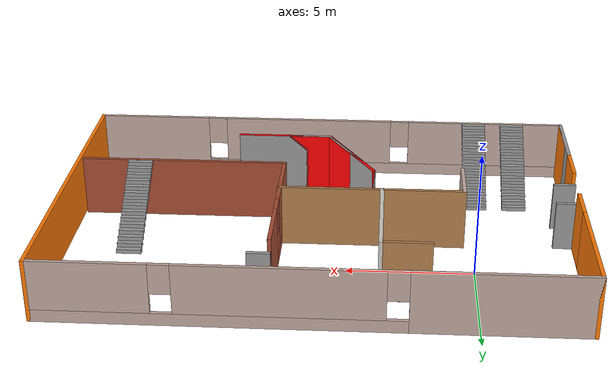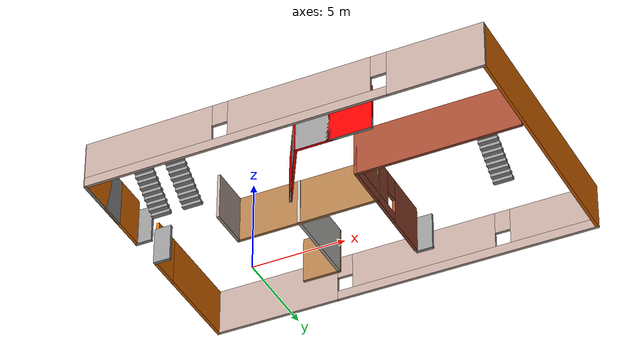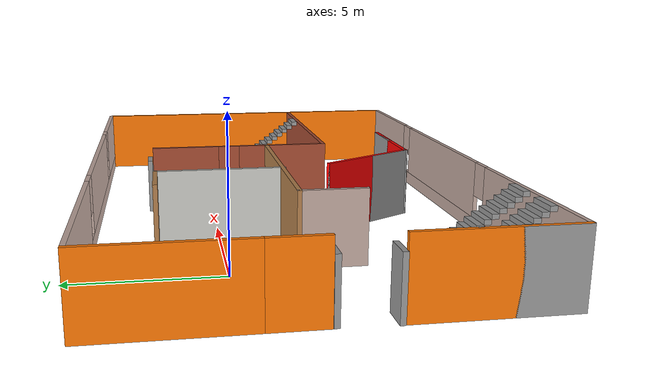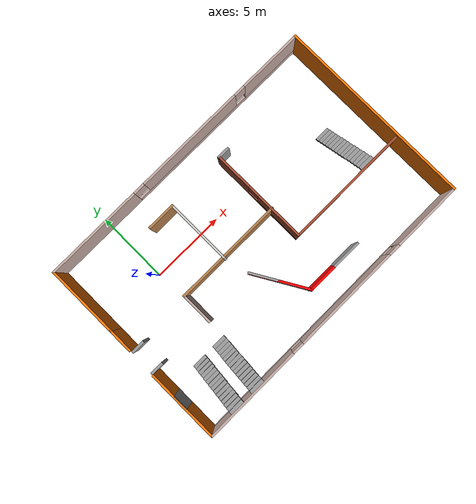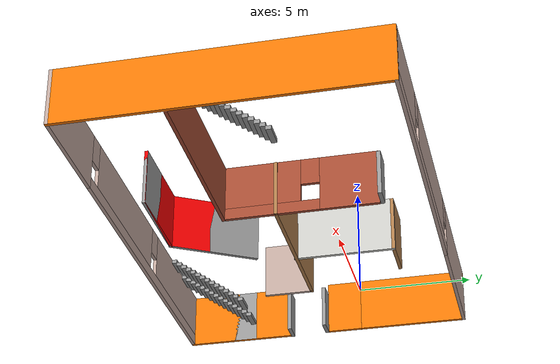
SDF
<?xml version='1.0'?>
<sdf version='1.6'>
  <model name='buidlding1'>
    <pose frame=''>6.0818 -2.405 0 0 -0 0</pose>
    <link name='Door_0'>
      <collision name='Door_0_Collision'>
        <geometry>
          <box>
            <size>0.9 0.17 2</size>
          </box>
        </geometry>
        <pose frame=''>0 0 1 0 -0 0</pose>
      </collision>
      <visual name='Door_0_Visual'>
        <pose frame=''>0 0 1 0 -0 0</pose>
        <geometry>
          <box>
            <size>0.9 0.17 2</size>
          </box>
        </geometry>
        <material>
          <script>
            <uri>file://media/materials/scripts/gazebo.material</uri>
            <name>Gazebo/Grey</name>
          </script>
        </material>
      </visual>
      <pose frame=''>-9.76683 0.055388 0 0 -0 0</pose>
    </link>
    <link name='Door_1'>
      <collision name='Door_1_Collision'>
        <geometry>
          <box>
            <size>0.9 0.17 2</size>
          </box>
        </geometry>
        <pose frame=''>0 0 1 0 -0 0</pose>
      </collision>
      <visual name='Door_1_Visual'>
        <pose frame=''>0 0 1 0 -0 0</pose>
        <geometry>
          <box>
            <size>0.9 0.17 2</size>
          </box>
        </geometry>
        <material>
          <script>
            <uri>file://media/materials/scripts/gazebo.material</uri>
            <name>Gazebo/Grey</name>
          </script>
        </material>
      </visual>
      <pose frame=''>-9.84728 -1.65427 0 0 -0 0</pose>
    </link>
    <link name='Door_2'>
      <collision name='Door_2_Collision'>
        <geometry>
          <box>
            <size>0.9 0.17 2</size>
          </box>
        </geometry>
        <pose frame=''>0 0 1 0 -0 0</pose>
      </collision>
      <visual name='Door_2_Visual'>
        <pose frame=''>0 0 1 0 -0 0</pose>
        <geometry>
          <box>
            <size>0.9 0.17 2</size>
          </box>
        </geometry>
        <material>
          <script>
            <uri>file://media/materials/scripts/gazebo.material</uri>
            <name>Gazebo/Grey</name>
          </script>
        </material>
      </visual>
      <pose frame=''>2.03298 4.75086 0 0 -0 0</pose>
    </link>
    <link name='Stairs_0'>
      <visual name='Stairs_0_Visual_0'>
        <pose frame=''>-6.36763 -3.21899 0.083333 0 -0 0</pose>
        <geometry>
          <box>
            <size>1 0.233333 0.166667</size>
          </box>
        </geometry>
        <material>
          <script>
            <uri>file://media/materials/scripts/gazebo.material</uri>
            <name>Gazebo/Grey</name>
          </script>
          <ambient>1 1 1 1</ambient>
        </material>
        <meta>
          <layer>0</layer>
        </meta>
      </visual>
      <collision name='Stairs_0_Collision_0'>
        <geometry>
          <box>
            <size>1 0.233333 0.166667</size>
          </box>
        </geometry>
        <pose frame=''>-6.36763 -3.21899 0.083333 0 -0 0</pose>
      </collision>
      <visual name='Stairs_0_Visual_1'>
        <pose frame=''>-6.36763 -3.45232 0.25 0 -0 0</pose>
        <geometry>
          <box>
            <size>1 0.233333 0.166667</size>
          </box>
        </geometry>
        <material>
          <script>
            <uri>file://media/materials/scripts/gazebo.material</uri>
            <name>Gazebo/Grey</name>
          </script>
          <ambient>1 1 1 1</ambient>
        </material>
        <meta>
          <layer>0</layer>
        </meta>
      </visual>
      <collision name='Stairs_0_Collision_1'>
        <geometry>
          <box>
            <size>1 0.233333 0.166667</size>
          </box>
        </geometry>
        <pose frame=''>-6.36763 -3.45232 0.25 0 -0 0</pose>
      </collision>
      <visual name='Stairs_0_Visual_2'>
        <pose frame=''>-6.36763 -3.68566 0.416667 0 -0 0</pose>
        <geometry>
          <box>
            <size>1 0.233333 0.166667</size>
          </box>
        </geometry>
        <material>
          <script>
            <uri>file://media/materials/scripts/gazebo.material</uri>
            <name>Gazebo/Grey</name>
          </script>
          <ambient>1 1 1 1</ambient>
        </material>
        <meta>
          <layer>0</layer>
        </meta>
      </visual>
      <collision name='Stairs_0_Collision_2'>
        <geometry>
          <box>
            <size>1 0.233333 0.166667</size>
          </box>
        </geometry>
        <pose frame=''>-6.36763 -3.68566 0.416667 0 -0 0</pose>
      </collision>
      <visual name='Stairs_0_Visual_3'>
        <pose frame=''>-6.36763 -3.91899 0.583333 0 -0 0</pose>
        <geometry>
          <box>
            <size>1 0.233333 0.166667</size>
          </box>
        </geometry>
        <material>
          <script>
            <uri>file://media/materials/scripts/gazebo.material</uri>
            <name>Gazebo/Grey</name>
          </script>
          <ambient>1 1 1 1</ambient>
        </material>
        <meta>
          <layer>0</layer>
        </meta>
      </visual>
      <collision name='Stairs_0_Collision_3'>
        <geometry>
          <box>
            <size>1 0.233333 0.166667</size>
          </box>
        </geometry>
        <pose frame=''>-6.36763 -3.91899 0.583333 0 -0 0</pose>
      </collision>
      <visual name='Stairs_0_Visual_4'>
        <pose frame=''>-6.36763 -4.15232 0.75 0 -0 0</pose>
        <geometry>
          <box>
            <size>1 0.233333 0.166667</size>
          </box>
        </geometry>
        <material>
          <script>
            <uri>file://media/materials/scripts/gazebo.material</uri>
            <name>Gazebo/Grey</name>
          </script>
          <ambient>1 1 1 1</ambient>
        </material>
        <meta>
          <layer>0</layer>
        </meta>
      </visual>
      <collision name='Stairs_0_Collision_4'>
        <geometry>
          <box>
            <size>1 0.233333 0.166667</size>
          </box>
        </geometry>
        <pose frame=''>-6.36763 -4.15232 0.75 0 -0 0</pose>
      </collision>
      <visual name='Stairs_0_Visual_5'>
        <pose frame=''>-6.36763 -4.38566 0.916667 0 -0 0</pose>
        <geometry>
          <box>
            <size>1 0.233333 0.166667</size>
          </box>
        </geometry>
        <material>
          <script>
            <uri>file://media/materials/scripts/gazebo.material</uri>
            <name>Gazebo/Grey</name>
          </script>
          <ambient>1 1 1 1</ambient>
        </material>
        <meta>
          <layer>0</layer>
        </meta>
      </visual>
      <collision name='Stairs_0_Collision_5'>
        <geometry>
          <box>
            <size>1 0.233333 0.166667</size>
          </box>
        </geometry>
        <pose frame=''>-6.36763 -4.38566 0.916667 0 -0 0</pose>
      </collision>
      <visual name='Stairs_0_Visual_6'>
        <pose frame=''>-6.36763 -4.61899 1.08333 0 -0 0</pose>
        <geometry>
          <box>
            <size>1 0.233333 0.166667</size>
          </box>
        </geometry>
        <material>
          <script>
            <uri>file://media/materials/scripts/gazebo.material</uri>
            <name>Gazebo/Grey</name>
          </script>
          <ambient>1 1 1 1</ambient>
        </material>
        <meta>
          <layer>0</layer>
        </meta>
      </visual>
      <collision name='Stairs_0_Collision_6'>
        <geometry>
          <box>
            <size>1 0.233333 0.166667</size>
          </box>
        </geometry>
        <pose frame=''>-6.36763 -4.61899 1.08333 0 -0 0</pose>
      </collision>
      <visual name='Stairs_0_Visual_7'>
        <pose frame=''>-6.36763 -4.85232 1.25 0 -0 0</pose>
        <geometry>
          <box>
            <size>1 0.233333 0.166667</size>
          </box>
        </geometry>
        <material>
          <script>
            <uri>file://media/materials/scripts/gazebo.material</uri>
            <name>Gazebo/Grey</name>
          </script>
          <ambient>1 1 1 1</ambient>
        </material>
        <meta>
          <layer>0</layer>
        </meta>
      </visual>
      <collision name='Stairs_0_Collision_7'>
        <geometry>
          <box>
            <size>1 0.233333 0.166667</size>
          </box>
        </geometry>
        <pose frame=''>-6.36763 -4.85232 1.25 0 -0 0</pose>
      </collision>
      <visual name='Stairs_0_Visual_8'>
        <pose frame=''>-6.36763 -5.08566 1.41667 0 -0 0</pose>
        <geometry>
          <box>
            <size>1 0.233333 0.166667</size>
          </box>
        </geometry>
        <material>
          <script>
            <uri>file://media/materials/scripts/gazebo.material</uri>
            <name>Gazebo/Grey</name>
          </script>
          <ambient>1 1 1 1</ambient>
        </material>
        <meta>
          <layer>0</layer>
        </meta>
      </visual>
      <collision name='Stairs_0_Collision_8'>
        <geometry>
          <box>
            <size>1 0.233333 0.166667</size>
          </box>
        </geometry>
        <pose frame=''>-6.36763 -5.08566 1.41667 0 -0 0</pose>
      </collision>
      <visual name='Stairs_0_Visual_9'>
        <pose frame=''>-6.36763 -5.31899 1.58333 0 -0 0</pose>
        <geometry>
          <box>
            <size>1 0.233333 0.166667</size>
          </box>
        </geometry>
        <material>
          <script>
            <uri>file://media/materials/scripts/gazebo.material</uri>
            <name>Gazebo/Grey</name>
          </script>
          <ambient>1 1 1 1</ambient>
        </material>
        <meta>
          <layer>0</layer>
        </meta>
      </visual>
      <collision name='Stairs_0_Collision_9'>
        <geometry>
          <box>
            <size>1 0.233333 0.166667</size>
          </box>
        </geometry>
        <pose frame=''>-6.36763 -5.31899 1.58333 0 -0 0</pose>
      </collision>
      <visual name='Stairs_0_Visual_10'>
        <pose frame=''>-6.36763 -5.55232 1.75 0 -0 0</pose>
        <geometry>
          <box>
            <size>1 0.233333 0.166667</size>
          </box>
        </geometry>
        <material>
          <script>
            <uri>file://media/materials/scripts/gazebo.material</uri>
            <name>Gazebo/Grey</name>
          </script>
          <ambient>1 1 1 1</ambient>
        </material>
        <meta>
          <layer>0</layer>
        </meta>
      </visual>
      <collision name='Stairs_0_Collision_10'>
        <geometry>
          <box>
            <size>1 0.233333 0.166667</size>
          </box>
        </geometry>
        <pose frame=''>-6.36763 -5.55232 1.75 0 -0 0</pose>
      </collision>
      <visual name='Stairs_0_Visual_11'>
        <pose frame=''>-6.36763 -5.78566 1.91667 0 -0 0</pose>
        <geometry>
          <box>
            <size>1 0.233333 0.166667</size>
          </box>
        </geometry>
        <material>
          <script>
            <uri>file://media/materials/scripts/gazebo.material</uri>
            <name>Gazebo/Grey</name>
          </script>
          <ambient>1 1 1 1</ambient>
        </material>
        <meta>
          <layer>0</layer>
        </meta>
      </visual>
      <collision name='Stairs_0_Collision_11'>
        <geometry>
          <box>
            <size>1 0.233333 0.166667</size>
          </box>
        </geometry>
        <pose frame=''>-6.36763 -5.78566 1.91667 0 -0 0</pose>
      </collision>
      <visual name='Stairs_0_Visual_12'>
        <pose frame=''>-6.36763 -6.01899 2.08333 0 -0 0</pose>
        <geometry>
          <box>
            <size>1 0.233333 0.166667</size>
          </box>
        </geometry>
        <material>
          <script>
            <uri>file://media/materials/scripts/gazebo.material</uri>
            <name>Gazebo/Grey</name>
          </script>
          <ambient>1 1 1 1</ambient>
        </material>
        <meta>
          <layer>0</layer>
        </meta>
      </visual>
      <collision name='Stairs_0_Collision_12'>
        <geometry>
          <box>
            <size>1 0.233333 0.166667</size>
          </box>
        </geometry>
        <pose frame=''>-6.36763 -6.01899 2.08333 0 -0 0</pose>
      </collision>
      <visual name='Stairs_0_Visual_13'>
        <pose frame=''>-6.36763 -6.25232 2.25 0 -0 0</pose>
        <geometry>
          <box>
            <size>1 0.233333 0.166667</size>
          </box>
        </geometry>
        <material>
          <script>
            <uri>file://media/materials/scripts/gazebo.material</uri>
            <name>Gazebo/Grey</name>
          </script>
          <ambient>1 1 1 1</ambient>
        </material>
        <meta>
          <layer>0</layer>
        </meta>
      </visual>
      <collision name='Stairs_0_Collision_13'>
        <geometry>
          <box>
            <size>1 0.233333 0.166667</size>
          </box>
        </geometry>
        <pose frame=''>-6.36763 -6.25232 2.25 0 -0 0</pose>
      </collision>
      <visual name='Stairs_0_Visual_14'>
        <pose frame=''>-6.36763 -6.48566 2.41667 0 -0 0</pose>
        <geometry>
          <box>
            <size>1 0.233333 0.166667</size>
          </box>
        </geometry>
        <material>
          <script>
            <uri>file://media/materials/scripts/gazebo.material</uri>
            <name>Gazebo/Grey</name>
          </script>
          <ambient>1 1 1 1</ambient>
        </material>
        <meta>
          <layer>0</layer>
        </meta>
      </visual>
      <collision name='Stairs_0_Collision_14'>
        <geometry>
          <box>
            <size>1 0.233333 0.166667</size>
          </box>
        </geometry>
        <pose frame=''>-6.36763 -6.48566 2.41667 0 -0 0</pose>
      </collision>
    </link>
    <link name='Stairs_1'>
      <visual name='Stairs_1_Visual_0'>
        <pose frame=''>7.60041 1.42857 0.083333 0 -0 0</pose>
        <geometry>
          <box>
            <size>1 0.233333 0.166667</size>
          </box>
        </geometry>
        <material>
          <script>
            <uri>file://media/materials/scripts/gazebo.material</uri>
            <name>Gazebo/Grey</name>
          </script>
          <ambient>1 1 1 1</ambient>
        </material>
        <meta>
          <layer>0</layer>
        </meta>
      </visual>
      <collision name='Stairs_1_Collision_0'>
        <geometry>
          <box>
            <size>1 0.233333 0.166667</size>
          </box>
        </geometry>
        <pose frame=''>7.60041 1.42857 0.083333 0 -0 0</pose>
      </collision>
      <visual name='Stairs_1_Visual_1'>
        <pose frame=''>7.60041 1.19524 0.25 0 -0 0</pose>
        <geometry>
          <box>
            <size>1 0.233333 0.166667</size>
          </box>
        </geometry>
        <material>
          <script>
            <uri>file://media/materials/scripts/gazebo.material</uri>
            <name>Gazebo/Grey</name>
          </script>
          <ambient>1 1 1 1</ambient>
        </material>
        <meta>
          <layer>0</layer>
        </meta>
      </visual>
      <collision name='Stairs_1_Collision_1'>
        <geometry>
          <box>
            <size>1 0.233333 0.166667</size>
          </box>
        </geometry>
        <pose frame=''>7.60041 1.19524 0.25 0 -0 0</pose>
      </collision>
      <visual name='Stairs_1_Visual_2'>
        <pose frame=''>7.60041 0.961905 0.416667 0 -0 0</pose>
        <geometry>
          <box>
            <size>1 0.233333 0.166667</size>
          </box>
        </geometry>
        <material>
          <script>
            <uri>file://media/materials/scripts/gazebo.material</uri>
            <name>Gazebo/Grey</name>
          </script>
          <ambient>1 1 1 1</ambient>
        </material>
        <meta>
          <layer>0</layer>
        </meta>
      </visual>
      <collision name='Stairs_1_Collision_2'>
        <geometry>
          <box>
            <size>1 0.233333 0.166667</size>
          </box>
        </geometry>
        <pose frame=''>7.60041 0.961905 0.416667 0 -0 0</pose>
      </collision>
      <visual name='Stairs_1_Visual_3'>
        <pose frame=''>7.60041 0.728572 0.583333 0 -0 0</pose>
        <geometry>
          <box>
            <size>1 0.233333 0.166667</size>
          </box>
        </geometry>
        <material>
          <script>
            <uri>file://media/materials/scripts/gazebo.material</uri>
            <name>Gazebo/Grey</name>
          </script>
          <ambient>1 1 1 1</ambient>
        </material>
        <meta>
          <layer>0</layer>
        </meta>
      </visual>
      <collision name='Stairs_1_Collision_3'>
        <geometry>
          <box>
            <size>1 0.233333 0.166667</size>
          </box>
        </geometry>
        <pose frame=''>7.60041 0.728572 0.583333 0 -0 0</pose>
      </collision>
      <visual name='Stairs_1_Visual_4'>
        <pose frame=''>7.60041 0.495239 0.75 0 -0 0</pose>
        <geometry>
          <box>
            <size>1 0.233333 0.166667</size>
          </box>
        </geometry>
        <material>
          <script>
            <uri>file://media/materials/scripts/gazebo.material</uri>
            <name>Gazebo/Grey</name>
          </script>
          <ambient>1 1 1 1</ambient>
        </material>
        <meta>
          <layer>0</layer>
        </meta>
      </visual>
      <collision name='Stairs_1_Collision_4'>
        <geometry>
          <box>
            <size>1 0.233333 0.166667</size>
          </box>
        </geometry>
        <pose frame=''>7.60041 0.495239 0.75 0 -0 0</pose>
      </collision>
      <visual name='Stairs_1_Visual_5'>
        <pose frame=''>7.60041 0.261905 0.916667 0 -0 0</pose>
        <geometry>
          <box>
            <size>1 0.233333 0.166667</size>
          </box>
        </geometry>
        <material>
          <script>
            <uri>file://media/materials/scripts/gazebo.material</uri>
            <name>Gazebo/Grey</name>
          </script>
          <ambient>1 1 1 1</ambient>
        </material>
        <meta>
          <layer>0</layer>
        </meta>
      </visual>
      <collision name='Stairs_1_Collision_5'>
        <geometry>
          <box>
            <size>1 0.233333 0.166667</size>
          </box>
        </geometry>
        <pose frame=''>7.60041 0.261905 0.916667 0 -0 0</pose>
      </collision>
      <visual name='Stairs_1_Visual_6'>
        <pose frame=''>7.60041 0.028572 1.08333 0 -0 0</pose>
        <geometry>
          <box>
            <size>1 0.233333 0.166667</size>
          </box>
        </geometry>
        <material>
          <script>
            <uri>file://media/materials/scripts/gazebo.material</uri>
            <name>Gazebo/Grey</name>
          </script>
          <ambient>1 1 1 1</ambient>
        </material>
        <meta>
          <layer>0</layer>
        </meta>
      </visual>
      <collision name='Stairs_1_Collision_6'>
        <geometry>
          <box>
            <size>1 0.233333 0.166667</size>
          </box>
        </geometry>
        <pose frame=''>7.60041 0.028572 1.08333 0 -0 0</pose>
      </collision>
      <visual name='Stairs_1_Visual_7'>
        <pose frame=''>7.60041 -0.204761 1.25 0 -0 0</pose>
        <geometry>
          <box>
            <size>1 0.233333 0.166667</size>
          </box>
        </geometry>
        <material>
          <script>
            <uri>file://media/materials/scripts/gazebo.material</uri>
            <name>Gazebo/Grey</name>
          </script>
          <ambient>1 1 1 1</ambient>
        </material>
        <meta>
          <layer>0</layer>
        </meta>
      </visual>
      <collision name='Stairs_1_Collision_7'>
        <geometry>
          <box>
            <size>1 0.233333 0.166667</size>
          </box>
        </geometry>
        <pose frame=''>7.60041 -0.204761 1.25 0 -0 0</pose>
      </collision>
      <visual name='Stairs_1_Visual_8'>
        <pose frame=''>7.60041 -0.438095 1.41667 0 -0 0</pose>
        <geometry>
          <box>
            <size>1 0.233333 0.166667</size>
          </box>
        </geometry>
        <material>
          <script>
            <uri>file://media/materials/scripts/gazebo.material</uri>
            <name>Gazebo/Grey</name>
          </script>
          <ambient>1 1 1 1</ambient>
        </material>
        <meta>
          <layer>0</layer>
        </meta>
      </visual>
      <collision name='Stairs_1_Collision_8'>
        <geometry>
          <box>
            <size>1 0.233333 0.166667</size>
          </box>
        </geometry>
        <pose frame=''>7.60041 -0.438095 1.41667 0 -0 0</pose>
      </collision>
      <visual name='Stairs_1_Visual_9'>
        <pose frame=''>7.60041 -0.671428 1.58333 0 -0 0</pose>
        <geometry>
          <box>
            <size>1 0.233333 0.166667</size>
          </box>
        </geometry>
        <material>
          <script>
            <uri>file://media/materials/scripts/gazebo.material</uri>
            <name>Gazebo/Grey</name>
          </script>
          <ambient>1 1 1 1</ambient>
        </material>
        <meta>
          <layer>0</layer>
        </meta>
      </visual>
      <collision name='Stairs_1_Collision_9'>
        <geometry>
          <box>
            <size>1 0.233333 0.166667</size>
          </box>
        </geometry>
        <pose frame=''>7.60041 -0.671428 1.58333 0 -0 0</pose>
      </collision>
      <visual name='Stairs_1_Visual_10'>
        <pose frame=''>7.60041 -0.904761 1.75 0 -0 0</pose>
        <geometry>
          <box>
            <size>1 0.233333 0.166667</size>
          </box>
        </geometry>
        <material>
          <script>
            <uri>file://media/materials/scripts/gazebo.material</uri>
            <name>Gazebo/Grey</name>
          </script>
          <ambient>1 1 1 1</ambient>
        </material>
        <meta>
          <layer>0</layer>
        </meta>
      </visual>
      <collision name='Stairs_1_Collision_10'>
        <geometry>
          <box>
            <size>1 0.233333 0.166667</size>
          </box>
        </geometry>
        <pose frame=''>7.60041 -0.904761 1.75 0 -0 0</pose>
      </collision>
      <visual name='Stairs_1_Visual_11'>
        <pose frame=''>7.60041 -1.1381 1.91667 0 -0 0</pose>
        <geometry>
          <box>
            <size>1 0.233333 0.166667</size>
          </box>
        </geometry>
        <material>
          <script>
            <uri>file://media/materials/scripts/gazebo.material</uri>
            <name>Gazebo/Grey</name>
          </script>
          <ambient>1 1 1 1</ambient>
        </material>
        <meta>
          <layer>0</layer>
        </meta>
      </visual>
      <collision name='Stairs_1_Collision_11'>
        <geometry>
          <box>
            <size>1 0.233333 0.166667</size>
          </box>
        </geometry>
        <pose frame=''>7.60041 -1.1381 1.91667 0 -0 0</pose>
      </collision>
      <visual name='Stairs_1_Visual_12'>
        <pose frame=''>7.60041 -1.37143 2.08333 0 -0 0</pose>
        <geometry>
          <box>
            <size>1 0.233333 0.166667</size>
          </box>
        </geometry>
        <material>
          <script>
            <uri>file://media/materials/scripts/gazebo.material</uri>
            <name>Gazebo/Grey</name>
          </script>
          <ambient>1 1 1 1</ambient>
        </material>
        <meta>
          <layer>0</layer>
        </meta>
      </visual>
      <collision name='Stairs_1_Collision_12'>
        <geometry>
          <box>
            <size>1 0.233333 0.166667</size>
          </box>
        </geometry>
        <pose frame=''>7.60041 -1.37143 2.08333 0 -0 0</pose>
      </collision>
      <visual name='Stairs_1_Visual_13'>
        <pose frame=''>7.60041 -1.60476 2.25 0 -0 0</pose>
        <geometry>
          <box>
            <size>1 0.233333 0.166667</size>
          </box>
        </geometry>
        <material>
          <script>
            <uri>file://media/materials/scripts/gazebo.material</uri>
            <name>Gazebo/Grey</name>
          </script>
          <ambient>1 1 1 1</ambient>
        </material>
        <meta>
          <layer>0</layer>
        </meta>
      </visual>
      <collision name='Stairs_1_Collision_13'>
        <geometry>
          <box>
            <size>1 0.233333 0.166667</size>
          </box>
        </geometry>
        <pose frame=''>7.60041 -1.60476 2.25 0 -0 0</pose>
      </collision>
      <visual name='Stairs_1_Visual_14'>
        <pose frame=''>7.60041 -1.8381 2.41667 0 -0 0</pose>
        <geometry>
          <box>
            <size>1 0.233333 0.166667</size>
          </box>
        </geometry>
        <material>
          <script>
            <uri>file://media/materials/scripts/gazebo.material</uri>
            <name>Gazebo/Grey</name>
          </script>
          <ambient>1 1 1 1</ambient>
        </material>
        <meta>
          <layer>0</layer>
        </meta>
      </visual>
      <collision name='Stairs_1_Collision_14'>
        <geometry>
          <box>
            <size>1 0.233333 0.166667</size>
          </box>
        </geometry>
        <pose frame=''>7.60041 -1.8381 2.41667 0 -0 0</pose>
      </collision>
    </link>
    <link name='Stairs_2'>
      <visual name='Stairs_2_Visual_0'>
        <pose frame=''>-8.0312 -3.22114 0.083333 0 -0 0</pose>
        <geometry>
          <box>
            <size>1 0.233333 0.166667</size>
          </box>
        </geometry>
        <material>
          <script>
            <uri>file://media/materials/scripts/gazebo.material</uri>
            <name>Gazebo/Grey</name>
          </script>
          <ambient>1 1 1 1</ambient>
        </material>
        <meta>
          <layer>0</layer>
        </meta>
      </visual>
      <collision name='Stairs_2_Collision_0'>
        <geometry>
          <box>
            <size>1 0.233333 0.166667</size>
          </box>
        </geometry>
        <pose frame=''>-8.0312 -3.22114 0.083333 0 -0 0</pose>
      </collision>
      <visual name='Stairs_2_Visual_1'>
        <pose frame=''>-8.0312 -3.45448 0.25 0 -0 0</pose>
        <geometry>
          <box>
            <size>1 0.233333 0.166667</size>
          </box>
        </geometry>
        <material>
          <script>
            <uri>file://media/materials/scripts/gazebo.material</uri>
            <name>Gazebo/Grey</name>
          </script>
          <ambient>1 1 1 1</ambient>
        </material>
        <meta>
          <layer>0</layer>
        </meta>
      </visual>
      <collision name='Stairs_2_Collision_1'>
        <geometry>
          <box>
            <size>1 0.233333 0.166667</size>
          </box>
        </geometry>
        <pose frame=''>-8.0312 -3.45448 0.25 0 -0 0</pose>
      </collision>
      <visual name='Stairs_2_Visual_2'>
        <pose frame=''>-8.0312 -3.68781 0.416667 0 -0 0</pose>
        <geometry>
          <box>
            <size>1 0.233333 0.166667</size>
          </box>
        </geometry>
        <material>
          <script>
            <uri>file://media/materials/scripts/gazebo.material</uri>
            <name>Gazebo/Grey</name>
          </script>
          <ambient>1 1 1 1</ambient>
        </material>
        <meta>
          <layer>0</layer>
        </meta>
      </visual>
      <collision name='Stairs_2_Collision_2'>
        <geometry>
          <box>
            <size>1 0.233333 0.166667</size>
          </box>
        </geometry>
        <pose frame=''>-8.0312 -3.68781 0.416667 0 -0 0</pose>
      </collision>
      <visual name='Stairs_2_Visual_3'>
        <pose frame=''>-8.0312 -3.92114 0.583333 0 -0 0</pose>
        <geometry>
          <box>
            <size>1 0.233333 0.166667</size>
          </box>
        </geometry>
        <material>
          <script>
            <uri>file://media/materials/scripts/gazebo.material</uri>
            <name>Gazebo/Grey</name>
          </script>
          <ambient>1 1 1 1</ambient>
        </material>
        <meta>
          <layer>0</layer>
        </meta>
      </visual>
      <collision name='Stairs_2_Collision_3'>
        <geometry>
          <box>
            <size>1 0.233333 0.166667</size>
          </box>
        </geometry>
        <pose frame=''>-8.0312 -3.92114 0.583333 0 -0 0</pose>
      </collision>
      <visual name='Stairs_2_Visual_4'>
        <pose frame=''>-8.0312 -4.15448 0.75 0 -0 0</pose>
        <geometry>
          <box>
            <size>1 0.233333 0.166667</size>
          </box>
        </geometry>
        <material>
          <script>
            <uri>file://media/materials/scripts/gazebo.material</uri>
            <name>Gazebo/Grey</name>
          </script>
          <ambient>1 1 1 1</ambient>
        </material>
        <meta>
          <layer>0</layer>
        </meta>
      </visual>
      <collision name='Stairs_2_Collision_4'>
        <geometry>
          <box>
            <size>1 0.233333 0.166667</size>
          </box>
        </geometry>
        <pose frame=''>-8.0312 -4.15448 0.75 0 -0 0</pose>
      </collision>
      <visual name='Stairs_2_Visual_5'>
        <pose frame=''>-8.0312 -4.38781 0.916667 0 -0 0</pose>
        <geometry>
          <box>
            <size>1 0.233333 0.166667</size>
          </box>
        </geometry>
        <material>
          <script>
            <uri>file://media/materials/scripts/gazebo.material</uri>
            <name>Gazebo/Grey</name>
          </script>
          <ambient>1 1 1 1</ambient>
        </material>
        <meta>
          <layer>0</layer>
        </meta>
      </visual>
      <collision name='Stairs_2_Collision_5'>
        <geometry>
          <box>
            <size>1 0.233333 0.166667</size>
          </box>
        </geometry>
        <pose frame=''>-8.0312 -4.38781 0.916667 0 -0 0</pose>
      </collision>
      <visual name='Stairs_2_Visual_6'>
        <pose frame=''>-8.0312 -4.62114 1.08333 0 -0 0</pose>
        <geometry>
          <box>
            <size>1 0.233333 0.166667</size>
          </box>
        </geometry>
        <material>
          <script>
            <uri>file://media/materials/scripts/gazebo.material</uri>
            <name>Gazebo/Grey</name>
          </script>
          <ambient>1 1 1 1</ambient>
        </material>
        <meta>
          <layer>0</layer>
        </meta>
      </visual>
      <collision name='Stairs_2_Collision_6'>
        <geometry>
          <box>
            <size>1 0.233333 0.166667</size>
          </box>
        </geometry>
        <pose frame=''>-8.0312 -4.62114 1.08333 0 -0 0</pose>
      </collision>
      <visual name='Stairs_2_Visual_7'>
        <pose frame=''>-8.0312 -4.85448 1.25 0 -0 0</pose>
        <geometry>
          <box>
            <size>1 0.233333 0.166667</size>
          </box>
        </geometry>
        <material>
          <script>
            <uri>file://media/materials/scripts/gazebo.material</uri>
            <name>Gazebo/Grey</name>
          </script>
          <ambient>1 1 1 1</ambient>
        </material>
        <meta>
          <layer>0</layer>
        </meta>
      </visual>
      <collision name='Stairs_2_Collision_7'>
        <geometry>
          <box>
            <size>1 0.233333 0.166667</size>
          </box>
        </geometry>
        <pose frame=''>-8.0312 -4.85448 1.25 0 -0 0</pose>
      </collision>
      <visual name='Stairs_2_Visual_8'>
        <pose frame=''>-8.0312 -5.08781 1.41667 0 -0 0</pose>
        <geometry>
          <box>
            <size>1 0.233333 0.166667</size>
          </box>
        </geometry>
        <material>
          <script>
            <uri>file://media/materials/scripts/gazebo.material</uri>
            <name>Gazebo/Grey</name>
          </script>
          <ambient>1 1 1 1</ambient>
        </material>
        <meta>
          <layer>0</layer>
        </meta>
      </visual>
      <collision name='Stairs_2_Collision_8'>
        <geometry>
          <box>
            <size>1 0.233333 0.166667</size>
          </box>
        </geometry>
        <pose frame=''>-8.0312 -5.08781 1.41667 0 -0 0</pose>
      </collision>
      <visual name='Stairs_2_Visual_9'>
        <pose frame=''>-8.0312 -5.32114 1.58333 0 -0 0</pose>
        <geometry>
          <box>
            <size>1 0.233333 0.166667</size>
          </box>
        </geometry>
        <material>
          <script>
            <uri>file://media/materials/scripts/gazebo.material</uri>
            <name>Gazebo/Grey</name>
          </script>
          <ambient>1 1 1 1</ambient>
        </material>
        <meta>
          <layer>0</layer>
        </meta>
      </visual>
      <collision name='Stairs_2_Collision_9'>
        <geometry>
          <box>
            <size>1 0.233333 0.166667</size>
          </box>
        </geometry>
        <pose frame=''>-8.0312 -5.32114 1.58333 0 -0 0</pose>
      </collision>
      <visual name='Stairs_2_Visual_10'>
        <pose frame=''>-8.0312 -5.55448 1.75 0 -0 0</pose>
        <geometry>
          <box>
            <size>1 0.233333 0.166667</size>
          </box>
        </geometry>
        <material>
          <script>
            <uri>file://media/materials/scripts/gazebo.material</uri>
            <name>Gazebo/Grey</name>
          </script>
          <ambient>1 1 1 1</ambient>
        </material>
        <meta>
          <layer>0</layer>
        </meta>
      </visual>
      <collision name='Stairs_2_Collision_10'>
        <geometry>
          <box>
            <size>1 0.233333 0.166667</size>
          </box>
        </geometry>
        <pose frame=''>-8.0312 -5.55448 1.75 0 -0 0</pose>
      </collision>
      <visual name='Stairs_2_Visual_11'>
        <pose frame=''>-8.0312 -5.78781 1.91667 0 -0 0</pose>
        <geometry>
          <box>
            <size>1 0.233333 0.166667</size>
          </box>
        </geometry>
        <material>
          <script>
            <uri>file://media/materials/scripts/gazebo.material</uri>
            <name>Gazebo/Grey</name>
          </script>
          <ambient>1 1 1 1</ambient>
        </material>
        <meta>
          <layer>0</layer>
        </meta>
      </visual>
      <collision name='Stairs_2_Collision_11'>
        <geometry>
          <box>
            <size>1 0.233333 0.166667</size>
          </box>
        </geometry>
        <pose frame=''>-8.0312 -5.78781 1.91667 0 -0 0</pose>
      </collision>
      <visual name='Stairs_2_Visual_12'>
        <pose frame=''>-8.0312 -6.02114 2.08333 0 -0 0</pose>
        <geometry>
          <box>
            <size>1 0.233333 0.166667</size>
          </box>
        </geometry>
        <material>
          <script>
            <uri>file://media/materials/scripts/gazebo.material</uri>
            <name>Gazebo/Grey</name>
          </script>
          <ambient>1 1 1 1</ambient>
        </material>
        <meta>
          <layer>0</layer>
        </meta>
      </visual>
      <collision name='Stairs_2_Collision_12'>
        <geometry>
          <box>
            <size>1 0.233333 0.166667</size>
          </box>
        </geometry>
        <pose frame=''>-8.0312 -6.02114 2.08333 0 -0 0</pose>
      </collision>
      <visual name='Stairs_2_Visual_13'>
        <pose frame=''>-8.0312 -6.25448 2.25 0 -0 0</pose>
        <geometry>
          <box>
            <size>1 0.233333 0.166667</size>
          </box>
        </geometry>
        <material>
          <script>
            <uri>file://media/materials/scripts/gazebo.material</uri>
            <name>Gazebo/Grey</name>
          </script>
          <ambient>1 1 1 1</ambient>
        </material>
        <meta>
          <layer>0</layer>
        </meta>
      </visual>
      <collision name='Stairs_2_Collision_13'>
        <geometry>
          <box>
            <size>1 0.233333 0.166667</size>
          </box>
        </geometry>
        <pose frame=''>-8.0312 -6.25448 2.25 0 -0 0</pose>
      </collision>
      <visual name='Stairs_2_Visual_14'>
        <pose frame=''>-8.0312 -6.48781 2.41667 0 -0 0</pose>
        <geometry>
          <box>
            <size>1 0.233333 0.166667</size>
          </box>
        </geometry>
        <material>
          <script>
            <uri>file://media/materials/scripts/gazebo.material</uri>
            <name>Gazebo/Grey</name>
          </script>
          <ambient>1 1 1 1</ambient>
        </material>
        <meta>
          <layer>0</layer>
        </meta>
      </visual>
      <collision name='Stairs_2_Collision_14'>
        <geometry>
          <box>
            <size>1 0.233333 0.166667</size>
          </box>
        </geometry>
        <pose frame=''>-8.0312 -6.48781 2.41667 0 -0 0</pose>
      </collision>
    </link>
    <link name='Wall_0'>
      <collision name='Wall_0_Collision'>
        <geometry>
          <box>
            <size>1.75 0.15 2.5</size>
          </box>
        </geometry>
        <pose frame=''>0 0 1.25 0 -0 0</pose>
      </collision>
      <visual name='Wall_0_Visual'>
        <pose frame=''>0 0 1.25 0 -0 0</pose>
        <geometry>
          <box>
            <size>1.75 0.15 2.5</size>
          </box>
        </geometry>
        <material>
          <script>
            <uri>file://media/materials/scripts/gazebo.material</uri>
            <name>Gazebo/Grey</name>
          </script>
          <ambient>0.996078 0.47451 0.0196078 1</ambient>
        </material>
        <meta>
          <layer>0</layer>
        </meta>
      </visual>
      <pose frame=''>-10.1518 1.025 0 0 -0 1.5708</pose>
    </link>
    <link name='Wall_10'>
      <collision name='Wall_10_Collision'>
        <geometry>
          <box>
            <size>3.25 0.15 2.5</size>
          </box>
        </geometry>
        <pose frame=''>0 0 1.25 0 -0 0</pose>
      </collision>
      <visual name='Wall_10_Visual'>
        <pose frame=''>0 0 1.25 0 -0 0</pose>
        <geometry>
          <box>
            <size>3.25 0.15 2.5</size>
          </box>
        </geometry>
        <material>
          <script>
            <uri>file://media/materials/scripts/gazebo.material</uri>
            <name>Gazebo/Grey</name>
          </script>
          <ambient>1 1 1 1</ambient>
        </material>
        <meta>
          <layer>0</layer>
        </meta>
      </visual>
      <pose frame=''>-10.1982 -5.10236 0 0 0 -1.5708</pose>
    </link>
    <link name='Wall_11'>
      <collision name='Wall_11_Collision'>
        <geometry>
          <box>
            <size>5 0.15 2.5</size>
          </box>
        </geometry>
        <pose frame=''>0 0 1.25 0 -0 0</pose>
      </collision>
      <visual name='Wall_11_Visual'>
        <pose frame=''>0 0 1.25 0 -0 0</pose>
        <geometry>
          <box>
            <size>5 0.15 2.5</size>
          </box>
        </geometry>
        <material>
          <script>
            <uri>file://media/materials/scripts/gazebo.material</uri>
            <name>Gazebo/Grey</name>
          </script>
          <ambient>0.996078 0.47451 0.0196078 1</ambient>
        </material>
        <meta>
          <layer>0</layer>
        </meta>
      </visual>
      <pose frame=''>-10.1982 -4.22736 0 0 -0 1.5708</pose>
    </link>
    <link name='Wall_13'>
      <pose frame=''>1.63334 1.26267 0 0 0 -1.5708</pose>
      <visual name='Wall_13_Visual_0'>
        <pose frame=''>-2.11036 0 1.25 0 -0 0</pose>
        <geometry>
          <box>
            <size>2.52928 0.15 2.5</size>
          </box>
        </geometry>
        <material>
          <script>
            <uri>file://media/materials/scripts/gazebo.material</uri>
            <name>Gazebo/Bricks</name>
          </script>
          <ambient>0.435294 0.796078 0.67451 1</ambient>
        </material>
        <meta>
          <layer>0</layer>
        </meta>
      </visual>
      <collision name='Wall_13_Collision_0'>
        <geometry>
          <box>
            <size>2.52928 0.15 2.5</size>
          </box>
        </geometry>
        <pose frame=''>-2.11036 0 1.25 0 -0 0</pose>
      </collision>
      <visual name='Wall_13_Visual_1'>
        <pose frame=''>1.26464 0 0.25 0 -0 0</pose>
        <geometry>
          <box>
            <size>4.22072 0.15 0.5</size>
          </box>
        </geometry>
        <material>
          <script>
            <uri>file://media/materials/scripts/gazebo.material</uri>
            <name>Gazebo/Bricks</name>
          </script>
          <ambient>0.435294 0.796078 0.67451 1</ambient>
        </material>
        <meta>
          <layer>0</layer>
        </meta>
      </visual>
      <collision name='Wall_13_Collision_1'>
        <geometry>
          <box>
            <size>4.22072 0.15 0.5</size>
          </box>
        </geometry>
        <pose frame=''>1.26464 0 0.25 0 -0 0</pose>
      </collision>
      <visual name='Wall_13_Visual_2'>
        <pose frame=''>1.66464 0 1.5 0 -0 0</pose>
        <geometry>
          <box>
            <size>3.42071 0.15 2</size>
          </box>
        </geometry>
        <material>
          <script>
            <uri>file://media/materials/scripts/gazebo.material</uri>
            <name>Gazebo/Bricks</name>
          </script>
          <ambient>0.435294 0.796078 0.67451 1</ambient>
        </material>
        <meta>
          <layer>0</layer>
        </meta>
      </visual>
      <collision name='Wall_13_Collision_2'>
        <geometry>
          <box>
            <size>3.42071 0.15 2</size>
          </box>
        </geometry>
        <pose frame=''>1.66464 0 1.5 0 -0 0</pose>
      </collision>
      <visual name='Wall_13_Visual_3'>
        <pose frame=''>-0.445715 0 1.9 0 -0 0</pose>
        <geometry>
          <box>
            <size>0.8 0.15 1.2</size>
          </box>
        </geometry>
        <material>
          <script>
            <uri>file://media/materials/scripts/gazebo.material</uri>
            <name>Gazebo/Bricks</name>
          </script>
          <ambient>0.435294 0.796078 0.67451 1</ambient>
        </material>
        <meta>
          <layer>0</layer>
        </meta>
      </visual>
      <collision name='Wall_13_Collision_3'>
        <geometry>
          <box>
            <size>0.8 0.15 1.2</size>
          </box>
        </geometry>
        <pose frame=''>-0.445715 0 1.9 0 -0 0</pose>
      </collision>
    </link>
    <link name='Wall_14'>
      <collision name='Wall_14_Collision'>
        <geometry>
          <box>
            <size>8.5 0.15 2.5</size>
          </box>
        </geometry>
        <pose frame=''>0 0 1.25 0 -0 0</pose>
      </collision>
      <visual name='Wall_14_Visual'>
        <pose frame=''>0 0 1.25 0 -0 0</pose>
        <geometry>
          <box>
            <size>8.5 0.15 2.5</size>
          </box>
        </geometry>
        <material>
          <script>
            <uri>file://media/materials/scripts/gazebo.material</uri>
            <name>Gazebo/Bricks</name>
          </script>
          <ambient>0.435294 0.796078 0.67451 1</ambient>
        </material>
        <meta>
          <layer>0</layer>
        </meta>
      </visual>
      <pose frame=''>5.80834 -2.03733 0 0 -0 0</pose>
    </link>
    <link name='Wall_16'>
      <collision name='Wall_16_Collision'>
        <geometry>
          <box>
            <size>7.5 0.15 2.5</size>
          </box>
        </geometry>
        <pose frame=''>0 0 1.25 0 -0 0</pose>
      </collision>
      <visual name='Wall_16_Visual'>
        <pose frame=''>0 0 1.25 0 -0 0</pose>
        <geometry>
          <box>
            <size>7.5 0.15 2.5</size>
          </box>
        </geometry>
        <material>
          <script>
            <uri>file://media/materials/scripts/gazebo.material</uri>
            <name>Gazebo/Wood</name>
          </script>
          <ambient>1 1 1 1</ambient>
        </material>
        <meta>
          <layer>0</layer>
        </meta>
      </visual>
      <pose frame=''>-2.0091 0.223502 0 0 -0 3.14159</pose>
    </link>
    <link name='Wall_17'>
      <collision name='Wall_17_Collision'>
        <geometry>
          <box>
            <size>2.25 0.15 2.5</size>
          </box>
        </geometry>
        <pose frame=''>0 0 1.25 0 -0 0</pose>
      </collision>
      <visual name='Wall_17_Visual'>
        <pose frame=''>0 0 1.25 0 -0 0</pose>
        <geometry>
          <box>
            <size>2.25 0.15 2.5</size>
          </box>
        </geometry>
        <material>
          <script>
            <uri>file://media/materials/scripts/gazebo.material</uri>
            <name>Gazebo/Grey</name>
          </script>
          <ambient>0.760784 0.662745 0.627451 1</ambient>
        </material>
        <meta>
          <layer>0</layer>
        </meta>
      </visual>
      <pose frame=''>-5.6841 -0.826498 0 0 0 -1.5708</pose>
    </link>
    <link name='Wall_19'>
      <collision name='Wall_19_Collision'>
        <geometry>
          <box>
            <size>4.5 0.15 2.5</size>
          </box>
        </geometry>
        <pose frame=''>0 0 1.25 0 -0 0</pose>
      </collision>
      <visual name='Wall_19_Visual'>
        <pose frame=''>0 0 1.25 0 -0 0</pose>
        <geometry>
          <box>
            <size>4.5 0.15 2.5</size>
          </box>
        </geometry>
        <material>
          <script>
            <uri>file://media/materials/scripts/gazebo.material</uri>
            <name>Gazebo/CeilingTiled</name>
          </script>
          <ambient>1 1 1 1</ambient>
        </material>
        <meta>
          <layer>0</layer>
        </meta>
      </visual>
      <pose frame=''>-2.43319 2.36791 0 0 -0 1.5708</pose>
    </link>
    <link name='Wall_20'>
      <collision name='Wall_20_Collision'>
        <geometry>
          <box>
            <size>2 0.15 2.5</size>
          </box>
        </geometry>
        <pose frame=''>0 0 1.25 0 -0 0</pose>
      </collision>
      <visual name='Wall_20_Visual'>
        <pose frame=''>0 0 1.25 0 -0 0</pose>
        <geometry>
          <box>
            <size>2 0.15 2.5</size>
          </box>
        </geometry>
        <material>
          <script>
            <uri>file://media/materials/scripts/gazebo.material</uri>
            <name>Gazebo/Wood</name>
          </script>
          <ambient>1 1 1 1</ambient>
        </material>
        <meta>
          <layer>0</layer>
        </meta>
      </visual>
      <pose frame=''>-3.35819 4.54291 0 0 -0 3.14159</pose>
    </link>
    <link name='Wall_22'>
      <collision name='Wall_22_Collision'>
        <geometry>
          <box>
            <size>4 0.15 2.5</size>
          </box>
        </geometry>
        <pose frame=''>0 0 1.25 0 -0 0</pose>
      </collision>
      <visual name='Wall_22_Visual'>
        <pose frame=''>0 0 1.25 0 -0 0</pose>
        <geometry>
          <box>
            <size>4 0.15 2.5</size>
          </box>
        </geometry>
        <material>
          <script>
            <uri>file://media/materials/scripts/gazebo.material</uri>
            <name>Gazebo/Grey</name>
          </script>
          <ambient>1 0 0 1</ambient>
        </material>
        <meta>
          <layer>0</layer>
        </meta>
      </visual>
      <pose frame=''>-1.07083 -3.18738 0 0 -0 2.0944</pose>
    </link>
    <link name='Wall_23'>
      <collision name='Wall_23_Collision'>
        <geometry>
          <box>
            <size>4 0.15 2.5</size>
          </box>
        </geometry>
        <pose frame=''>0 0 1.25 0 -0 0</pose>
      </collision>
      <visual name='Wall_23_Visual'>
        <pose frame=''>0 0 1.25 0 -0 0</pose>
        <geometry>
          <box>
            <size>4 0.15 2.5</size>
          </box>
        </geometry>
        <material>
          <script>
            <uri>file://media/materials/scripts/gazebo.material</uri>
            <name>Gazebo/Grey</name>
          </script>
          <ambient>1 1 1 1</ambient>
        </material>
        <meta>
          <layer>0</layer>
        </meta>
      </visual>
      <pose frame=''>-1.07083 -3.18738 0 0 0 -1.0472</pose>
    </link>
    <link name='Wall_24'>
      <collision name='Wall_24_Collision'>
        <geometry>
          <box>
            <size>4 0.15 2.5</size>
          </box>
        </geometry>
        <pose frame=''>0 0 1.25 0 -0 0</pose>
      </collision>
      <visual name='Wall_24_Visual'>
        <pose frame=''>0 0 1.25 0 -0 0</pose>
        <geometry>
          <box>
            <size>4 0.15 2.5</size>
          </box>
        </geometry>
        <material>
          <script>
            <uri>file://media/materials/scripts/gazebo.material</uri>
            <name>Gazebo/Grey</name>
          </script>
          <ambient>1 1 1 1</ambient>
        </material>
        <meta>
          <layer>0</layer>
        </meta>
      </visual>
      <pose frame=''>1.81667 -4.85448 0 0 -0 0</pose>
    </link>
    <link name='Wall_25'>
      <collision name='Wall_25_Collision'>
        <geometry>
          <box>
            <size>4 0.15 2.5</size>
          </box>
        </geometry>
        <pose frame=''>0 0 1.25 0 -0 0</pose>
      </collision>
      <visual name='Wall_25_Visual'>
        <pose frame=''>0 0 1.25 0 -0 0</pose>
        <geometry>
          <box>
            <size>4 0.15 2.5</size>
          </box>
        </geometry>
        <material>
          <script>
            <uri>file://media/materials/scripts/gazebo.material</uri>
            <name>Gazebo/Grey</name>
          </script>
          <ambient>1 0 0 1</ambient>
        </material>
        <meta>
          <layer>0</layer>
        </meta>
      </visual>
      <pose frame=''>1.81667 -4.85448 0 0 -0 3.14159</pose>
    </link>
    <link name='Wall_3'>
      <collision name='Wall_3_Collision'>
        <geometry>
          <box>
            <size>5 0.15 2.5</size>
          </box>
        </geometry>
        <pose frame=''>0 0 1.25 0 -0 0</pose>
      </collision>
      <visual name='Wall_3_Visual'>
        <pose frame=''>0 0 1.25 0 -0 0</pose>
        <geometry>
          <box>
            <size>5 0.15 2.5</size>
          </box>
        </geometry>
        <material>
          <script>
            <uri>file://media/materials/scripts/gazebo.material</uri>
            <name>Gazebo/Grey</name>
          </script>
          <ambient>0.996078 0.47451 0.0196078 1</ambient>
        </material>
        <meta>
          <layer>0</layer>
        </meta>
      </visual>
      <pose frame=''>-10.1518 4.25 0 0 -0 1.5708</pose>
    </link>
    <link name='Wall_4'>
      <pose frame=''>0.023202 6.675 0 0 -0 0</pose>
      <visual name='Wall_4_Visual_0'>
        <pose frame=''>-6.89265 0 1.25 0 -0 0</pose>
        <geometry>
          <box>
            <size>6.7147 0.15 2.5</size>
          </box>
        </geometry>
        <material>
          <script>
            <uri>file://media/materials/scripts/gazebo.material</uri>
            <name>Gazebo/Grey</name>
          </script>
          <ambient>0.760784 0.662745 0.627451 1</ambient>
        </material>
        <meta>
          <layer>0</layer>
        </meta>
      </visual>
      <collision name='Wall_4_Collision_0'>
        <geometry>
          <box>
            <size>6.7147 0.15 2.5</size>
          </box>
        </geometry>
        <pose frame=''>-6.89265 0 1.25 0 -0 0</pose>
      </collision>
      <visual name='Wall_4_Visual_1'>
        <pose frame=''>3.35735 0 0.25 0 -0 0</pose>
        <geometry>
          <box>
            <size>13.7853 0.15 0.5</size>
          </box>
        </geometry>
        <material>
          <script>
            <uri>file://media/materials/scripts/gazebo.material</uri>
            <name>Gazebo/Grey</name>
          </script>
          <ambient>0.760784 0.662745 0.627451 1</ambient>
        </material>
        <meta>
          <layer>0</layer>
        </meta>
      </visual>
      <collision name='Wall_4_Collision_1'>
        <geometry>
          <box>
            <size>13.7853 0.15 0.5</size>
          </box>
        </geometry>
        <pose frame=''>3.35735 0 0.25 0 -0 0</pose>
      </collision>
      <visual name='Wall_4_Visual_2'>
        <pose frame=''>1.09837 0 1.5 0 -0 0</pose>
        <geometry>
          <box>
            <size>7.66735 0.15 2</size>
          </box>
        </geometry>
        <material>
          <script>
            <uri>file://media/materials/scripts/gazebo.material</uri>
            <name>Gazebo/Grey</name>
          </script>
          <ambient>0.760784 0.662745 0.627451 1</ambient>
        </material>
        <meta>
          <layer>0</layer>
        </meta>
      </visual>
      <collision name='Wall_4_Collision_2'>
        <geometry>
          <box>
            <size>7.66735 0.15 2</size>
          </box>
        </geometry>
        <pose frame=''>1.09837 0 1.5 0 -0 0</pose>
      </collision>
      <visual name='Wall_4_Visual_3'>
        <pose frame=''>7.99102 0 1.5 0 -0 0</pose>
        <geometry>
          <box>
            <size>4.51795 0.15 2</size>
          </box>
        </geometry>
        <material>
          <script>
            <uri>file://media/materials/scripts/gazebo.material</uri>
            <name>Gazebo/Grey</name>
          </script>
          <ambient>0.760784 0.662745 0.627451 1</ambient>
        </material>
        <meta>
          <layer>0</layer>
        </meta>
      </visual>
      <collision name='Wall_4_Collision_3'>
        <geometry>
          <box>
            <size>4.51795 0.15 2</size>
          </box>
        </geometry>
        <pose frame=''>7.99102 0 1.5 0 -0 0</pose>
      </collision>
      <visual name='Wall_4_Visual_4'>
        <pose frame=''>-3.1353 0 1.9 0 -0 0</pose>
        <geometry>
          <box>
            <size>0.8 0.15 1.2</size>
          </box>
        </geometry>
        <material>
          <script>
            <uri>file://media/materials/scripts/gazebo.material</uri>
            <name>Gazebo/Grey</name>
          </script>
          <ambient>0.760784 0.662745 0.627451 1</ambient>
        </material>
        <meta>
          <layer>0</layer>
        </meta>
      </visual>
      <collision name='Wall_4_Collision_4'>
        <geometry>
          <box>
            <size>0.8 0.15 1.2</size>
          </box>
        </geometry>
        <pose frame=''>-3.1353 0 1.9 0 -0 0</pose>
      </collision>
      <visual name='Wall_4_Visual_5'>
        <pose frame=''>5.33205 0 1.9 0 -0 0</pose>
        <geometry>
          <box>
            <size>0.8 0.15 1.2</size>
          </box>
        </geometry>
        <material>
          <script>
            <uri>file://media/materials/scripts/gazebo.material</uri>
            <name>Gazebo/Grey</name>
          </script>
          <ambient>0.760784 0.662745 0.627451 1</ambient>
        </material>
        <meta>
          <layer>0</layer>
        </meta>
      </visual>
      <collision name='Wall_4_Collision_5'>
        <geometry>
          <box>
            <size>0.8 0.15 1.2</size>
          </box>
        </geometry>
        <pose frame=''>5.33205 0 1.9 0 -0 0</pose>
      </collision>
    </link>
    <link name='Wall_5'>
      <collision name='Wall_5_Collision'>
        <geometry>
          <box>
            <size>13.5 0.15 2.5</size>
          </box>
        </geometry>
        <pose frame=''>0 0 1.25 0 -0 0</pose>
      </collision>
      <visual name='Wall_5_Visual'>
        <pose frame=''>0 0 1.25 0 -0 0</pose>
        <geometry>
          <box>
            <size>13.5 0.15 2.5</size>
          </box>
        </geometry>
        <material>
          <script>
            <uri>file://media/materials/scripts/gazebo.material</uri>
            <name>Gazebo/Grey</name>
          </script>
          <ambient>0.996078 0.47451 0.0196078 1</ambient>
        </material>
        <meta>
          <layer>0</layer>
        </meta>
      </visual>
      <pose frame=''>10.1982 0 0 0 0 -1.5708</pose>
    </link>
    <link name='Wall_6'>
      <pose frame=''>0.023202 -6.675 0 0 -0 3.14159</pose>
      <visual name='Wall_6_Visual_0'>
        <pose frame=''>-7.82172 0 1.25 0 -0 0</pose>
        <geometry>
          <box>
            <size>4.85655 0.15 2.5</size>
          </box>
        </geometry>
        <material>
          <script>
            <uri>file://media/materials/scripts/gazebo.material</uri>
            <name>Gazebo/Grey</name>
          </script>
          <ambient>0.760784 0.662745 0.627451 1</ambient>
        </material>
        <meta>
          <layer>0</layer>
        </meta>
      </visual>
      <collision name='Wall_6_Collision_0'>
        <geometry>
          <box>
            <size>4.85655 0.15 2.5</size>
          </box>
        </geometry>
        <pose frame=''>-7.82172 0 1.25 0 -0 0</pose>
      </collision>
      <visual name='Wall_6_Visual_1'>
        <pose frame=''>2.42828 0 0.25 0 -0 0</pose>
        <geometry>
          <box>
            <size>15.6434 0.15 0.5</size>
          </box>
        </geometry>
        <material>
          <script>
            <uri>file://media/materials/scripts/gazebo.material</uri>
            <name>Gazebo/Grey</name>
          </script>
          <ambient>0.760784 0.662745 0.627451 1</ambient>
        </material>
        <meta>
          <layer>0</layer>
        </meta>
      </visual>
      <collision name='Wall_6_Collision_1'>
        <geometry>
          <box>
            <size>15.6434 0.15 0.5</size>
          </box>
        </geometry>
        <pose frame=''>2.42828 0 0.25 0 -0 0</pose>
      </collision>
      <visual name='Wall_6_Visual_2'>
        <pose frame=''>-0.930505 0 1.5 0 -0 0</pose>
        <geometry>
          <box>
            <size>7.32588 0.15 2</size>
          </box>
        </geometry>
        <material>
          <script>
            <uri>file://media/materials/scripts/gazebo.material</uri>
            <name>Gazebo/Grey</name>
          </script>
          <ambient>0.760784 0.662745 0.627451 1</ambient>
        </material>
        <meta>
          <layer>0</layer>
        </meta>
      </visual>
      <collision name='Wall_6_Collision_2'>
        <geometry>
          <box>
            <size>7.32588 0.15 2</size>
          </box>
        </geometry>
        <pose frame=''>-0.930505 0 1.5 0 -0 0</pose>
      </collision>
      <visual name='Wall_6_Visual_3'>
        <pose frame=''>6.89122 0 1.5 0 -0 0</pose>
        <geometry>
          <box>
            <size>6.71756 0.15 2</size>
          </box>
        </geometry>
        <material>
          <script>
            <uri>file://media/materials/scripts/gazebo.material</uri>
            <name>Gazebo/Grey</name>
          </script>
          <ambient>0.760784 0.662745 0.627451 1</ambient>
        </material>
        <meta>
          <layer>0</layer>
        </meta>
      </visual>
      <collision name='Wall_6_Collision_3'>
        <geometry>
          <box>
            <size>6.71756 0.15 2</size>
          </box>
        </geometry>
        <pose frame=''>6.89122 0 1.5 0 -0 0</pose>
      </collision>
      <visual name='Wall_6_Visual_4'>
        <pose frame=''>-4.99345 0 1.9 0 -0 0</pose>
        <geometry>
          <box>
            <size>0.8 0.15 1.2</size>
          </box>
        </geometry>
        <material>
          <script>
            <uri>file://media/materials/scripts/gazebo.material</uri>
            <name>Gazebo/Grey</name>
          </script>
          <ambient>0.760784 0.662745 0.627451 1</ambient>
        </material>
        <meta>
          <layer>0</layer>
        </meta>
      </visual>
      <collision name='Wall_6_Collision_4'>
        <geometry>
          <box>
            <size>0.8 0.15 1.2</size>
          </box>
        </geometry>
        <pose frame=''>-4.99345 0 1.9 0 -0 0</pose>
      </collision>
      <visual name='Wall_6_Visual_5'>
        <pose frame=''>3.13244 0 1.9 0 -0 0</pose>
        <geometry>
          <box>
            <size>0.8 0.15 1.2</size>
          </box>
        </geometry>
        <material>
          <script>
            <uri>file://media/materials/scripts/gazebo.material</uri>
            <name>Gazebo/Grey</name>
          </script>
          <ambient>0.760784 0.662745 0.627451 1</ambient>
        </material>
        <meta>
          <layer>0</layer>
        </meta>
      </visual>
      <collision name='Wall_6_Collision_5'>
        <geometry>
          <box>
            <size>0.8 0.15 1.2</size>
          </box>
        </geometry>
        <pose frame=''>3.13244 0 1.9 0 -0 0</pose>
      </collision>
    </link>
    <static>1</static>
  </model>
</sdf>
